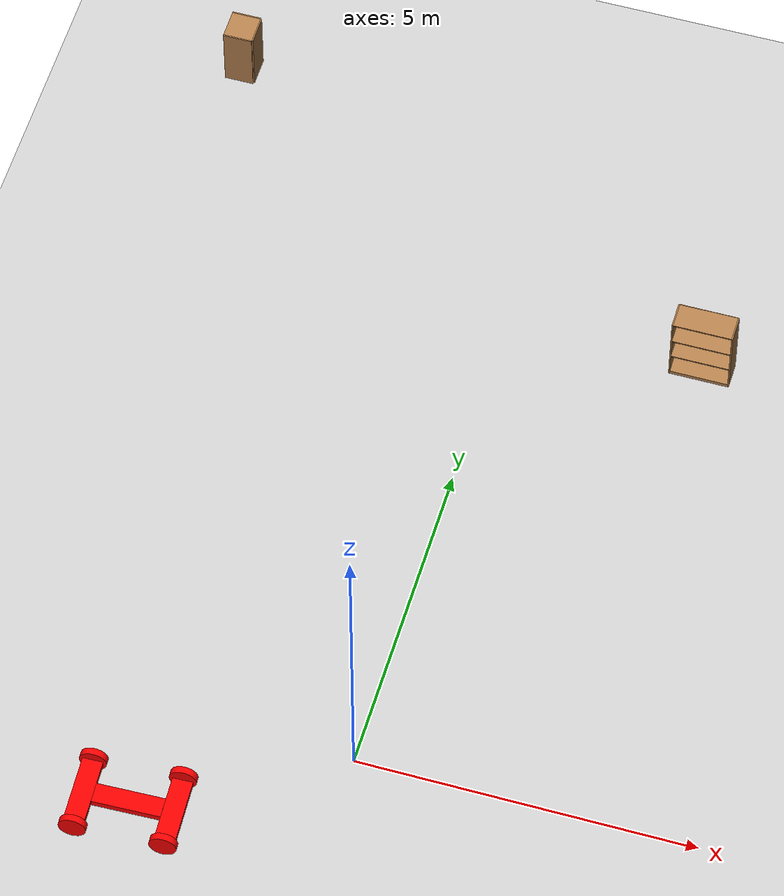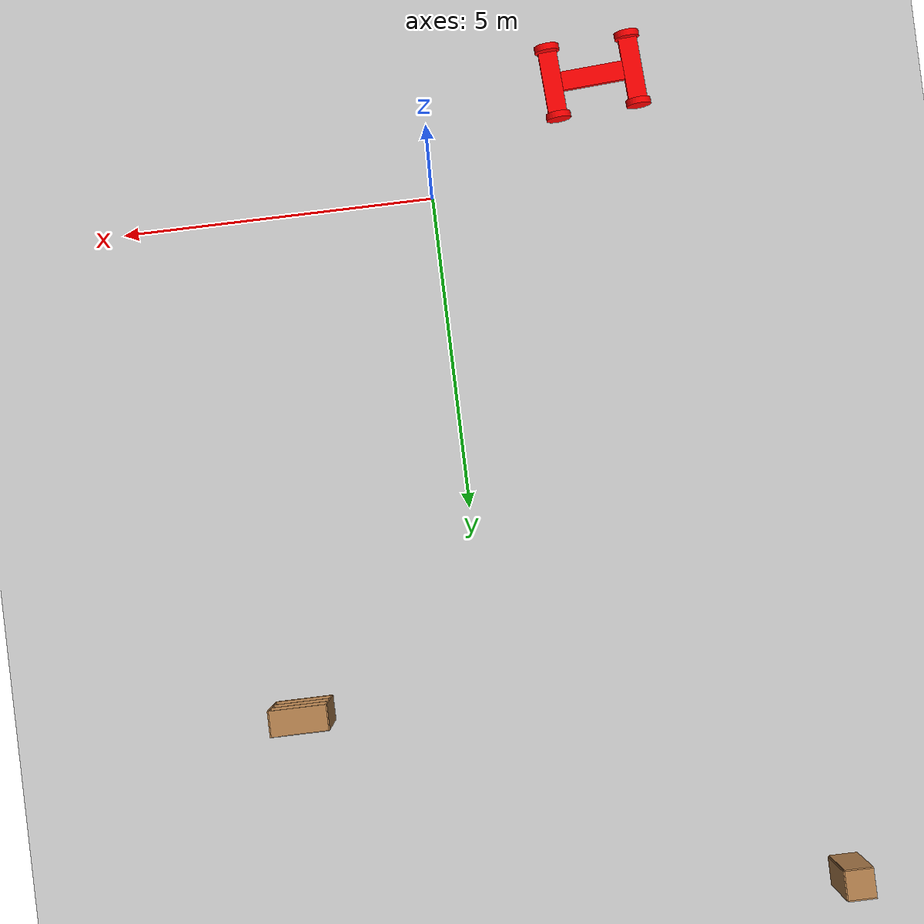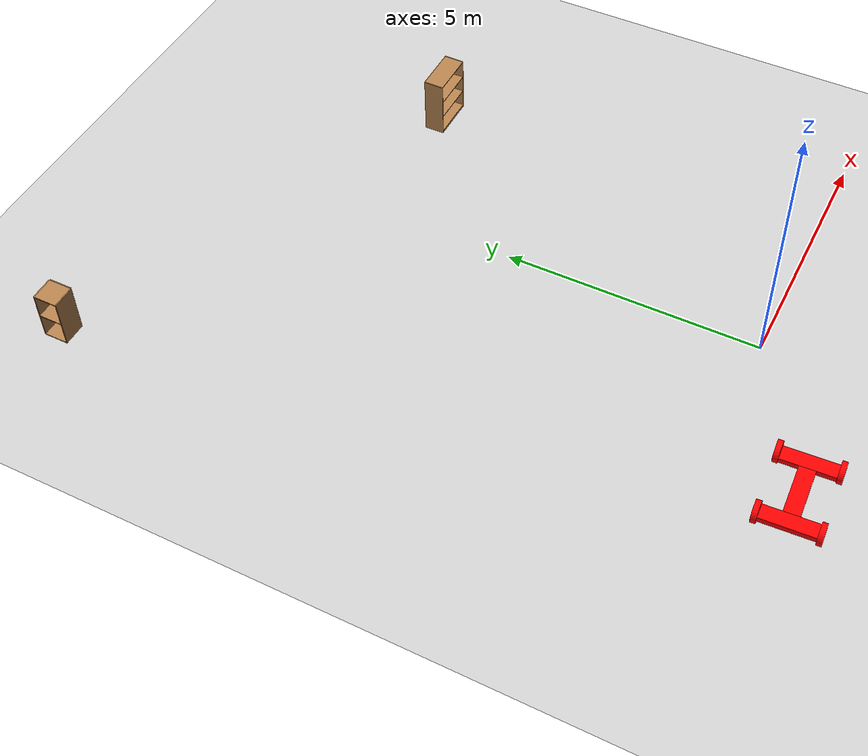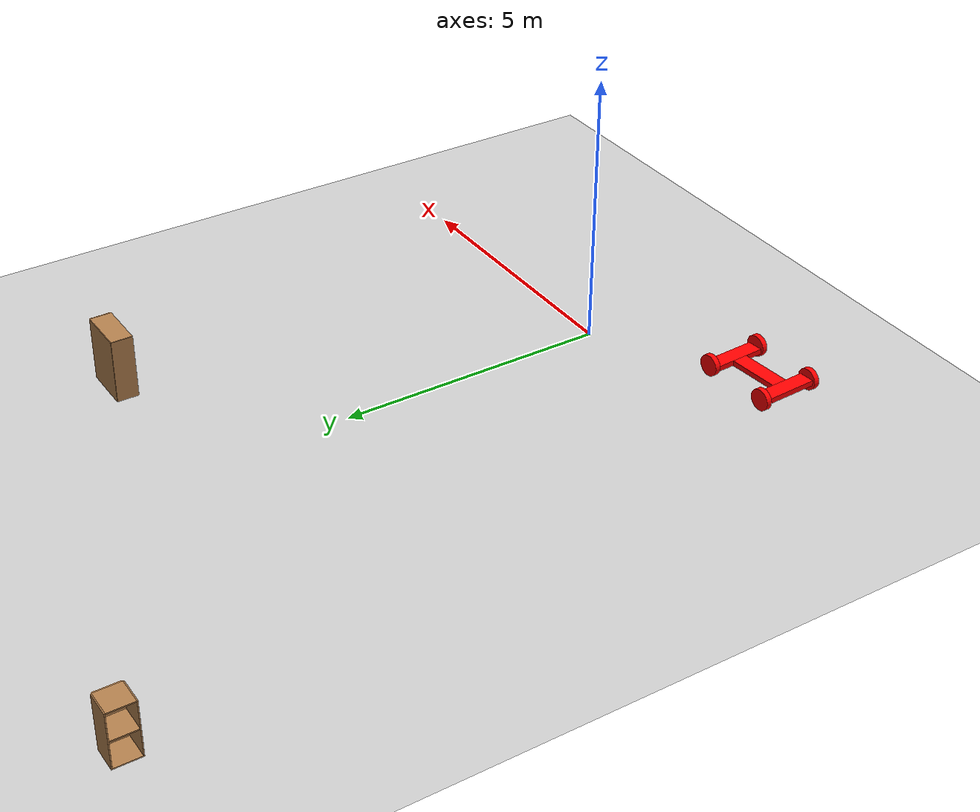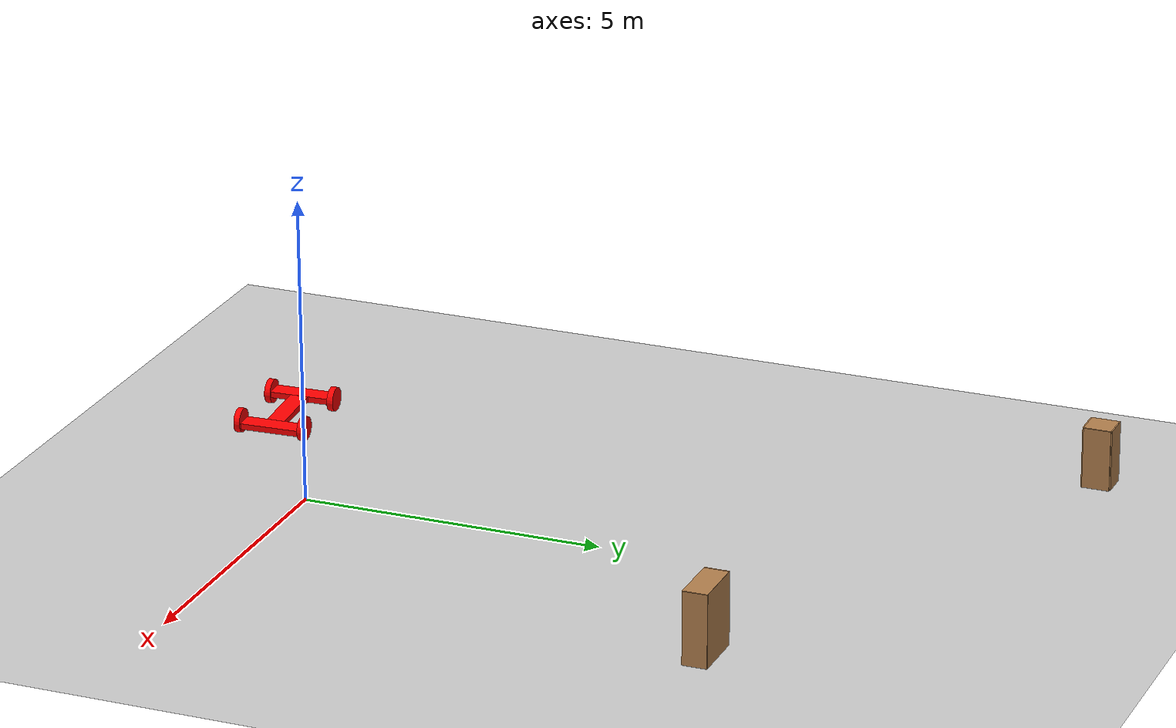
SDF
<sdf version="1.6">
 <world name="default">
  <model name="ground_plane">
   <static>1</static>
   <link name="link">
    <collision name="collision">
     <geometry><plane><normal>0 0 1</normal><size>100 100</size></plane></geometry>
     <surface><friction><ode><mu>100</mu><mu2>50</mu2></ode></friction></surface>
    </collision>
    <visual name="visual">
     <cast_shadows>0</cast_shadows>
     <geometry><plane><normal>0 0 1</normal><size>100 100</size></plane></geometry>
     <material>
      <script><uri>file://media/materials/scripts/gazebo.material</uri><name>Gazebo/Grey</name></script>
     </material>
    </visual>
   </link>
  </model>
  <model name="bookshelf">
   <static>1</static>
   <link name="link">
    <inertial><mass>1</mass></inertial>
    <collision name="back">
     <pose>0 0.005 0.6 0 -0 0</pose>
     <geometry><box><size>0.9 0.01 1.2</size></box></geometry>
    </collision>
    <visual name="visual1">
     <pose>0 0.005 0.6 0 -0 0</pose>
     <geometry><box><size>0.9 0.01 1.2</size></box></geometry>
     <material>
      <script><uri>file://media/materials/scripts/gazebo.material</uri><name>Gazebo/Wood</name></script>
     </material>
    </visual>
    <collision name="left_side">
     <pose>0.45 -0.195 0.6 0 -0 0</pose>
     <geometry><box><size>0.02 0.4 1.2</size></box></geometry>
    </collision>
    <visual name="visual2">
     <pose>0.45 -0.195 0.6 0 -0 0</pose>
     <geometry><box><size>0.02 0.4 1.2</size></box></geometry>
     <material>
      <script><uri>file://media/materials/scripts/gazebo.material</uri><name>Gazebo/Wood</name></script>
     </material>
    </visual>
    <collision name="right_side">
     <pose>-0.45 -0.195 0.6 0 -0 0</pose>
     <geometry><box><size>0.02 0.4 1.2</size></box></geometry>
    </collision>
    <visual name="visual3">
     <pose>-0.45 -0.195 0.6 0 -0 0</pose>
     <geometry><box><size>0.02 0.4 1.2</size></box></geometry>
     <material>
      <script><uri>file://media/materials/scripts/gazebo.material</uri><name>Gazebo/Wood</name></script>
     </material>
    </visual>
    <collision name="bottom">
     <pose>0 -0.195 0.03 0 -0 0</pose>
     <geometry><box><size>0.88 0.4 0.06</size></box></geometry>
    </collision>
    <visual name="visual4">
     <pose>0 -0.195 0.03 0 -0 0</pose>
     <geometry><box><size>0.88 0.4 0.06</size></box></geometry>
     <material>
      <script><uri>file://media/materials/scripts/gazebo.material</uri><name>Gazebo/Wood</name></script>
     </material>
    </visual>
    <collision name="top">
     <pose>0 -0.195 1.19 0 -0 0</pose>
     <geometry><box><size>0.88 0.4 0.02</size></box></geometry>
    </collision>
    <visual name="visual5">
     <pose>0 -0.195 1.19 0 -0 0</pose>
     <geometry><box><size>0.88 0.4 0.02</size></box></geometry>
     <material>
      <script><uri>file://media/materials/scripts/gazebo.material</uri><name>Gazebo/Wood</name></script>
     </material>
    </visual>
    <collision name="low_shelf">
     <pose>0 -0.195 0.43 0 -0 0</pose>
     <geometry><box><size>0.88 0.4 0.02</size></box></geometry>
    </collision>
    <visual name="visual6">
     <pose>0 -0.195 0.43 0 -0 0</pose>
     <geometry><box><size>0.88 0.4 0.02</size></box></geometry>
     <material>
      <script><uri>file://media/materials/scripts/gazebo.material</uri><name>Gazebo/Wood</name></script>
     </material>
    </visual>
    <collision name="high_shelf">
     <pose>0 -0.195 0.8 0 -0 0</pose>
     <geometry><box><size>0.88 0.4 0.02</size></box></geometry>
    </collision>
    <visual name="visual7">
     <pose>0 -0.195 0.8 0 -0 0</pose>
     <geometry><box><size>0.88 0.4 0.02</size></box></geometry>
     <material>
      <script><uri>file://media/materials/scripts/gazebo.material</uri><name>Gazebo/Wood</name></script>
     </material>
    </visual>
   </link>
   <pose>2.99223 8.1082 0 0 -0 0</pose>
  </model>
  <model name="cabinet">
   <static>1</static>
   <link name="cabinet_bottom_plate">
    <inertial>
     <pose>0 0 -1 0 -0 0</pose>
     <inertia><ixx>2.05</ixx><ixy>0</ixy><ixz>0</ixz><iyy>2.05</iyy><iyz>0</iyz><izz>2.05</izz></inertia>
     <mass>25</mass>
    </inertial>
    <collision name="cabinet_bottom_plate_geom">
     <pose>0 0 0.01 0 -0 0</pose>
     <geometry><box><size>0.45 0.45 0.02</size></box></geometry>
    </collision>
    <visual name="cabinet_bottom_plate_geom_visual">
     <pose>0 0 0.01 0 -0 0</pose>
     <geometry><box><size>0.45 0.45 0.02</size></box></geometry>
     <material>
      <script><uri>file://media/materials/scripts/gazebo.material</uri><name>Gazebo/Wood</name></script>
     </material>
    </visual>
    <collision name="cabinet_bottom_plate_geom_cabinet_back_plate">
     <pose>0.235 0 0.51 0 -0 0</pose>
     <geometry><box><size>0.02 0.45 1.02</size></box></geometry>
    </collision>
    <visual name="cabinet_bottom_plate_geom_cabinet_back_plate_visual">
     <pose>0.235 0 0.51 0 -0 0</pose>
     <geometry><box><size>0.02 0.45 1.02</size></box></geometry>
     <material>
      <script><uri>file://media/materials/scripts/gazebo.material</uri><name>Gazebo/Wood</name></script>
     </material>
    </visual>
    <collision name="cabinet_bottom_plate_geom_cabinet_left_plate">
     <pose>0 0.235 0.51 0 -0 0</pose>
     <geometry><box><size>0.45 0.02 1.02</size></box></geometry>
    </collision>
    <visual name="cabinet_bottom_plate_geom_cabinet_left_plate_visual">
     <pose>0 0.235 0.51 0 -0 0</pose>
     <geometry><box><size>0.45 0.02 1.02</size></box></geometry>
     <material>
      <script><uri>file://media/materials/scripts/gazebo.material</uri><name>Gazebo/Wood</name></script>
     </material>
    </visual>
    <collision name="cabinet_bottom_plate_geom_cabinet_middle_plate">
     <pose>0 0 0.51 0 -0 0</pose>
     <geometry><box><size>0.45 0.45 0.02</size></box></geometry>
    </collision>
    <visual name="cabinet_bottom_plate_geom_cabinet_middle_plate_visual">
     <pose>0 0 0.51 0 -0 0</pose>
     <geometry><box><size>0.45 0.45 0.02</size></box></geometry>
     <material>
      <script><uri>file://media/materials/scripts/gazebo.material</uri><name>Gazebo/Wood</name></script>
     </material>
    </visual>
    <collision name="cabinet_bottom_plate_geom_cabinet_right_plate">
     <pose>0 -0.235 0.51 0 -0 0</pose>
     <geometry><box><size>0.45 0.02 1.02</size></box></geometry>
    </collision>
    <visual name="cabinet_bottom_plate_geom_cabinet_right_plate_visual">
     <pose>0 -0.235 0.51 0 -0 0</pose>
     <geometry><box><size>0.45 0.02 1.02</size></box></geometry>
     <material>
      <script><uri>file://media/materials/scripts/gazebo.material</uri><name>Gazebo/Wood</name></script>
     </material>
    </visual>
    <collision name="cabinet_bottom_plate_geom_cabinet_top_plate">
     <pose>0 0 1.01 0 -0 0</pose>
     <geometry><box><size>0.45 0.45 0.02</size></box></geometry>
    </collision>
    <visual name="cabinet_bottom_plate_geom_cabinet_top_plate_visual">
     <pose>0 0 1.01 0 -0 0</pose>
     <geometry><box><size>0.45 0.45 0.02</size></box></geometry>
     <material>
      <script><uri>file://media/materials/scripts/gazebo.material</uri><name>Gazebo/Wood</name></script>
     </material>
    </visual>
   </link>
   <pose>-5.23174 11.4449 0 0 -0 0</pose>
  </model>
  <model name="Robot">
   <link name="link_0">
    <pose>0.650121 -0 -0.012852 0 -0 0</pose>
    <inertial>
     <mass>1</mass>
     <inertia>
      <ixx>0.166667</ixx>
      <ixy>0</ixy>
      <ixz>0</ixz>
      <iyy>0.166667</iyy>
      <iyz>0</iyz>
      <izz>0.166667</izz>
     </inertia>
    </inertial>
    <visual name="visual">
     <geometry><box><size>0.3 1 0.1</size></box></geometry>
     <material>
      <lighting>1</lighting>
      <script><uri>file://media/materials/scripts/gazebo.material</uri><name>Gazebo/Grey</name></script>
      <shader type="pixel"><normal_map>__default__</normal_map></shader>
      <ambient>1 0 0 1</ambient>
      <diffuse>1 0 0 1</diffuse>
      <specular>0.01 0.01 0.01 1</specular>
      <emissive>0 0 0 1</emissive>
     </material>
    </visual>
    <collision name="collision">
     <geometry><box><size>0.3 1 0.1</size></box></geometry>
     <surface>
      <friction>
       <ode><mu>1</mu><mu2>1</mu2><fdir1>0 0 0</fdir1><slip1>0</slip1><slip2>0</slip2></ode>
       <torsional>
        <coefficient>1</coefficient>
        <patch_radius>0</patch_radius>
        <surface_radius>0</surface_radius>
        <use_patch_radius>1</use_patch_radius>
        <ode><slip>0</slip></ode>
       </torsional>
      </friction>
      <bounce><restitution_coefficient>0</restitution_coefficient><threshold>1e+06</threshold></bounce>
      <contact>
       <collide_without_contact>0</collide_without_contact>
       <collide_without_contact_bitmask>1</collide_without_contact_bitmask>
       <collide_bitmask>1</collide_bitmask>
       <ode>
        <soft_cfm>0</soft_cfm>
        <soft_erp>0.2</soft_erp>
        <kp>1e+13</kp>
        <kd>1</kd>
        <max_vel>0.01</max_vel>
        <min_depth>0</min_depth>
       </ode>
       <bullet>
        <split_impulse>1</split_impulse>
        <split_impulse_penetration_threshold>-0.01</split_impulse_penetration_threshold>
        <soft_cfm>0</soft_cfm>
        <soft_erp>0.2</soft_erp>
        <kp>1e+13</kp>
        <kd>1</kd>
       </bullet>
      </contact>
     </surface>
    </collision>
   </link>
   <link name="link_0_clone">
    <pose>2e-06 -0 -0.012852 0 -0 1.57</pose>
    <inertial>
     <mass>1</mass>
     <inertia>
      <ixx>0.166667</ixx>
      <ixy>0</ixy>
      <ixz>0</ixz>
      <iyy>0.166667</iyy>
      <iyz>0</iyz>
      <izz>0.166667</izz>
     </inertia>
    </inertial>
    <visual name="visual">
     <geometry><box><size>0.3 1 0.1</size></box></geometry>
     <material>
      <lighting>1</lighting>
      <script><uri>file://media/materials/scripts/gazebo.material</uri><name>Gazebo/Grey</name></script>
      <shader type="pixel"><normal_map>__default__</normal_map></shader>
      <ambient>1 0 0 1</ambient>
      <diffuse>1 0 0 1</diffuse>
      <specular>0.01 0.01 0.01 1</specular>
      <emissive>0 0 0 1</emissive>
     </material>
    </visual>
    <collision name="collision">
     <geometry><box><size>0.3 1 0.1</size></box></geometry>
     <surface>
      <friction>
       <ode><mu>1</mu><mu2>1</mu2><fdir1>0 0 0</fdir1><slip1>0</slip1><slip2>0</slip2></ode>
       <torsional>
        <coefficient>1</coefficient>
        <patch_radius>0</patch_radius>
        <surface_radius>0</surface_radius>
        <use_patch_radius>1</use_patch_radius>
        <ode><slip>0</slip></ode>
       </torsional>
      </friction>
      <bounce><restitution_coefficient>0</restitution_coefficient><threshold>1e+06</threshold></bounce>
      <contact>
       <collide_without_contact>0</collide_without_contact>
       <collide_without_contact_bitmask>1</collide_without_contact_bitmask>
       <collide_bitmask>1</collide_bitmask>
       <ode>
        <soft_cfm>0</soft_cfm>
        <soft_erp>0.2</soft_erp>
        <kp>1e+13</kp>
        <kd>1</kd>
        <max_vel>0.01</max_vel>
        <min_depth>0</min_depth>
       </ode>
       <bullet>
        <split_impulse>1</split_impulse>
        <split_impulse_penetration_threshold>-0.01</split_impulse_penetration_threshold>
        <soft_cfm>0</soft_cfm>
        <soft_erp>0.2</soft_erp>
        <kp>1e+13</kp>
        <kd>1</kd>
       </bullet>
      </contact>
     </surface>
    </collision>
   </link>
   <link name="link_0_clone_0">
    <pose>-0.650118 0 -0.012852 0 -0 0</pose>
    <inertial>
     <mass>1</mass>
     <inertia>
      <ixx>0.166667</ixx>
      <ixy>0</ixy>
      <ixz>0</ixz>
      <iyy>0.166667</iyy>
      <iyz>0</iyz>
      <izz>0.166667</izz>
     </inertia>
    </inertial>
    <visual name="visual">
     <geometry><box><size>0.3 1 0.1</size></box></geometry>
     <material>
      <lighting>1</lighting>
      <script><uri>file://media/materials/scripts/gazebo.material</uri><name>Gazebo/Grey</name></script>
      <shader type="pixel"><normal_map>__default__</normal_map></shader>
      <ambient>1 0 0 1</ambient>
      <diffuse>1 0 0 1</diffuse>
      <specular>0.01 0.01 0.01 1</specular>
      <emissive>0 0 0 1</emissive>
     </material>
    </visual>
    <collision name="collision">
     <geometry><box><size>0.3 1 0.1</size></box></geometry>
     <surface>
      <friction>
       <ode><mu>1</mu><mu2>1</mu2><fdir1>0 0 0</fdir1><slip1>0</slip1><slip2>0</slip2></ode>
       <torsional>
        <coefficient>1</coefficient>
        <patch_radius>0</patch_radius>
        <surface_radius>0</surface_radius>
        <use_patch_radius>1</use_patch_radius>
        <ode><slip>0</slip></ode>
       </torsional>
      </friction>
      <bounce><restitution_coefficient>0</restitution_coefficient><threshold>1e+06</threshold></bounce>
      <contact>
       <collide_without_contact>0</collide_without_contact>
       <collide_without_contact_bitmask>1</collide_without_contact_bitmask>
       <collide_bitmask>1</collide_bitmask>
       <ode>
        <soft_cfm>0</soft_cfm>
        <soft_erp>0.2</soft_erp>
        <kp>1e+13</kp>
        <kd>1</kd>
        <max_vel>0.01</max_vel>
        <min_depth>0</min_depth>
       </ode>
       <bullet>
        <split_impulse>1</split_impulse>
        <split_impulse_penetration_threshold>-0.01</split_impulse_penetration_threshold>
        <soft_cfm>0</soft_cfm>
        <soft_erp>0.2</soft_erp>
        <kp>1e+13</kp>
        <kd>1</kd>
       </bullet>
      </contact>
     </surface>
    </collision>
   </link>
   <link name="link_2">
    <pose>0.650121 -0.550159 0.032112 1.57 -0 0</pose>
    <inertial>
     <mass>1</mass>
     <inertia><ixx>0.145833</ixx><ixy>0</ixy><ixz>0</ixz><iyy>0.145833</iyy><iyz>0</iyz><izz>0.125</izz></inertia>
    </inertial>
    <visual name="visual">
     <geometry><cylinder><radius>0.2</radius><length>0.1</length></cylinder></geometry>
     <material>
      <lighting>1</lighting>
      <script><uri>file://media/materials/scripts/gazebo.material</uri><name>Gazebo/Grey</name></script>
      <shader type="pixel"><normal_map>__default__</normal_map></shader>
      <ambient>1 0 0 1</ambient>
      <diffuse>1 0 0 1</diffuse>
      <specular>0.01 0.01 0.01 1</specular>
      <emissive>0 0 0 1</emissive>
     </material>
    </visual>
    <collision name="collision">
     <geometry><cylinder><radius>0.2</radius><length>0.1</length></cylinder></geometry>
     <surface>
      <friction>
       <ode><mu>1</mu><mu2>1</mu2><fdir1>0 0 0</fdir1><slip1>0</slip1><slip2>0</slip2></ode>
       <torsional>
        <coefficient>1</coefficient>
        <patch_radius>0</patch_radius>
        <surface_radius>0</surface_radius>
        <use_patch_radius>1</use_patch_radius>
        <ode><slip>0</slip></ode>
       </torsional>
      </friction>
      <bounce><restitution_coefficient>0</restitution_coefficient><threshold>1e+06</threshold></bounce>
      <contact>
       <collide_without_contact>0</collide_without_contact>
       <collide_without_contact_bitmask>1</collide_without_contact_bitmask>
       <collide_bitmask>1</collide_bitmask>
       <ode>
        <soft_cfm>0</soft_cfm>
        <soft_erp>0.2</soft_erp>
        <kp>1e+13</kp>
        <kd>1</kd>
        <max_vel>0.01</max_vel>
        <min_depth>0</min_depth>
       </ode>
       <bullet>
        <split_impulse>1</split_impulse>
        <split_impulse_penetration_threshold>-0.01</split_impulse_penetration_threshold>
        <soft_cfm>0</soft_cfm>
        <soft_erp>0.2</soft_erp>
        <kp>1e+13</kp>
        <kd>1</kd>
       </bullet>
      </contact>
     </surface>
    </collision>
   </link>
   <link name="link_2_clone">
    <pose>0.650121 0.550159 0.032148 1.57 -0 0</pose>
    <inertial>
     <mass>1</mass>
     <inertia><ixx>0.145833</ixx><ixy>0</ixy><ixz>0</ixz><iyy>0.145833</iyy><iyz>0</iyz><izz>0.125</izz></inertia>
    </inertial>
    <visual name="visual">
     <geometry><cylinder><radius>0.2</radius><length>0.1</length></cylinder></geometry>
     <material>
      <lighting>1</lighting>
      <script><uri>file://media/materials/scripts/gazebo.material</uri><name>Gazebo/Grey</name></script>
      <shader type="pixel"><normal_map>__default__</normal_map></shader>
      <ambient>1 0 0 1</ambient>
      <diffuse>1 0 0 1</diffuse>
      <specular>0.01 0.01 0.01 1</specular>
      <emissive>0 0 0 1</emissive>
     </material>
    </visual>
    <collision name="collision">
     <geometry><cylinder><radius>0.2</radius><length>0.1</length></cylinder></geometry>
     <surface>
      <friction>
       <ode><mu>1</mu><mu2>1</mu2><fdir1>0 0 0</fdir1><slip1>0</slip1><slip2>0</slip2></ode>
       <torsional>
        <coefficient>1</coefficient>
        <patch_radius>0</patch_radius>
        <surface_radius>0</surface_radius>
        <use_patch_radius>1</use_patch_radius>
        <ode><slip>0</slip></ode>
       </torsional>
      </friction>
      <bounce><restitution_coefficient>0</restitution_coefficient><threshold>1e+06</threshold></bounce>
      <contact>
       <collide_without_contact>0</collide_without_contact>
       <collide_without_contact_bitmask>1</collide_without_contact_bitmask>
       <collide_bitmask>1</collide_bitmask>
       <ode>
        <soft_cfm>0</soft_cfm>
        <soft_erp>0.2</soft_erp>
        <kp>1e+13</kp>
        <kd>1</kd>
        <max_vel>0.01</max_vel>
        <min_depth>0</min_depth>
       </ode>
       <bullet>
        <split_impulse>1</split_impulse>
        <split_impulse_penetration_threshold>-0.01</split_impulse_penetration_threshold>
        <soft_cfm>0</soft_cfm>
        <soft_erp>0.2</soft_erp>
        <kp>1e+13</kp>
        <kd>1</kd>
       </bullet>
      </contact>
     </surface>
    </collision>
   </link>
   <link name="link_2_clone_0">
    <pose>-0.650118 -0.550159 -0.012852 1.57 -0 0</pose>
    <inertial>
     <mass>1</mass>
     <inertia><ixx>0.145833</ixx><ixy>0</ixy><ixz>0</ixz><iyy>0.145833</iyy><iyz>0</iyz><izz>0.125</izz></inertia>
    </inertial>
    <visual name="visual">
     <geometry><cylinder><radius>0.2</radius><length>0.1</length></cylinder></geometry>
     <material>
      <lighting>1</lighting>
      <script><uri>file://media/materials/scripts/gazebo.material</uri><name>Gazebo/Grey</name></script>
      <shader type="pixel"><normal_map>__default__</normal_map></shader>
      <ambient>1 0 0 1</ambient>
      <diffuse>1 0 0 1</diffuse>
      <specular>0.01 0.01 0.01 1</specular>
      <emissive>0 0 0 1</emissive>
     </material>
    </visual>
    <collision name="collision">
     <geometry><cylinder><radius>0.2</radius><length>0.1</length></cylinder></geometry>
     <surface>
      <friction>
       <ode><mu>1</mu><mu2>1</mu2><fdir1>0 0 0</fdir1><slip1>0</slip1><slip2>0</slip2></ode>
       <torsional>
        <coefficient>1</coefficient>
        <patch_radius>0</patch_radius>
        <surface_radius>0</surface_radius>
        <use_patch_radius>1</use_patch_radius>
        <ode><slip>0</slip></ode>
       </torsional>
      </friction>
      <bounce><restitution_coefficient>0</restitution_coefficient><threshold>1e+06</threshold></bounce>
      <contact>
       <collide_without_contact>0</collide_without_contact>
       <collide_without_contact_bitmask>1</collide_without_contact_bitmask>
       <collide_bitmask>1</collide_bitmask>
       <ode>
        <soft_cfm>0</soft_cfm>
        <soft_erp>0.2</soft_erp>
        <kp>1e+13</kp>
        <kd>1</kd>
        <max_vel>0.01</max_vel>
        <min_depth>0</min_depth>
       </ode>
       <bullet>
        <split_impulse>1</split_impulse>
        <split_impulse_penetration_threshold>-0.01</split_impulse_penetration_threshold>
        <soft_cfm>0</soft_cfm>
        <soft_erp>0.2</soft_erp>
        <kp>1e+13</kp>
        <kd>1</kd>
       </bullet>
      </contact>
     </surface>
    </collision>
   </link>
   <link name="link_2_clone_1">
    <pose>-0.650118 0.550159 -0.012852 1.57 -0 0</pose>
    <inertial>
     <mass>1</mass>
     <inertia><ixx>0.145833</ixx><ixy>0</ixy><ixz>0</ixz><iyy>0.145833</iyy><iyz>0</iyz><izz>0.125</izz></inertia>
    </inertial>
    <visual name="visual">
     <geometry><cylinder><radius>0.2</radius><length>0.1</length></cylinder></geometry>
     <material>
      <lighting>1</lighting>
      <script><uri>file://media/materials/scripts/gazebo.material</uri><name>Gazebo/Grey</name></script>
      <shader type="pixel"><normal_map>__default__</normal_map></shader>
      <ambient>1 0 0 1</ambient>
      <diffuse>1 0 0 1</diffuse>
      <specular>0.01 0.01 0.01 1</specular>
      <emissive>0 0 0 1</emissive>
     </material>
    </visual>
    <collision name="collision">
     <geometry><cylinder><radius>0.2</radius><length>0.1</length></cylinder></geometry>
     <surface>
      <friction>
       <ode><mu>1</mu><mu2>1</mu2><fdir1>0 0 0</fdir1><slip1>0</slip1><slip2>0</slip2></ode>
       <torsional>
        <coefficient>1</coefficient>
        <patch_radius>0</patch_radius>
        <surface_radius>0</surface_radius>
        <use_patch_radius>1</use_patch_radius>
        <ode><slip>0</slip></ode>
       </torsional>
      </friction>
      <bounce><restitution_coefficient>0</restitution_coefficient><threshold>1e+06</threshold></bounce>
      <contact>
       <collide_without_contact>0</collide_without_contact>
       <collide_without_contact_bitmask>1</collide_without_contact_bitmask>
       <collide_bitmask>1</collide_bitmask>
       <ode>
        <soft_cfm>0</soft_cfm>
        <soft_erp>0.2</soft_erp>
        <kp>1e+13</kp>
        <kd>1</kd>
        <max_vel>0.01</max_vel>
        <min_depth>0</min_depth>
       </ode>
       <bullet>
        <split_impulse>1</split_impulse>
        <split_impulse_penetration_threshold>-0.01</split_impulse_penetration_threshold>
        <soft_cfm>0</soft_cfm>
        <soft_erp>0.2</soft_erp>
        <kp>1e+13</kp>
        <kd>1</kd>
       </bullet>
      </contact>
     </surface>
    </collision>
   </link>
   <joint name="link_0_JOINT_2" type="revolute">
    <parent>link_0</parent>
    <child>link_2</child>
    <axis>
     <xyz>1 0 0</xyz>
     <use_parent_model_frame>0</use_parent_model_frame>
     <limit>
      <lower>-1.79769e+308</lower>
      <upper>1.79769e+308</upper>
      <effort>-1</effort>
      <velocity>-1</velocity>
     </limit>
     <dynamics>
      <spring_reference>0</spring_reference>
      <spring_stiffness>0</spring_stiffness>
      <damping>0</damping>
      <friction>0</friction>
     </dynamics>
    </axis>
    <physics>
     <ode><limit><cfm>0</cfm><erp>0.2</erp></limit><suspension><cfm>0</cfm><erp>0.2</erp></suspension></ode>
    </physics>
   </joint>
   <joint name="link_0_JOINT_3" type="revolute">
    <parent>link_0</parent>
    <child>link_2_clone</child>
    <axis>
     <xyz>1 0 0</xyz>
     <use_parent_model_frame>0</use_parent_model_frame>
     <limit>
      <lower>-1.79769e+308</lower>
      <upper>1.79769e+308</upper>
      <effort>-1</effort>
      <velocity>-1</velocity>
     </limit>
     <dynamics>
      <spring_reference>0</spring_reference>
      <spring_stiffness>0</spring_stiffness>
      <damping>0</damping>
      <friction>0</friction>
     </dynamics>
    </axis>
    <physics>
     <ode><limit><cfm>0</cfm><erp>0.2</erp></limit><suspension><cfm>0</cfm><erp>0.2</erp></suspension></ode>
    </physics>
   </joint>
   <joint name="link_0_clone_0_JOINT_4" type="revolute">
    <parent>link_0_clone_0</parent>
    <child>link_2_clone_0</child>
    <axis>
     <xyz>1 0 0</xyz>
     <use_parent_model_frame>0</use_parent_model_frame>
     <limit>
      <lower>-1.79769e+308</lower>
      <upper>1.79769e+308</upper>
      <effort>-1</effort>
      <velocity>-1</velocity>
     </limit>
     <dynamics>
      <spring_reference>0</spring_reference>
      <spring_stiffness>0</spring_stiffness>
      <damping>0</damping>
      <friction>0</friction>
     </dynamics>
    </axis>
    <physics>
     <ode><limit><cfm>0</cfm><erp>0.2</erp></limit><suspension><cfm>0</cfm><erp>0.2</erp></suspension></ode>
    </physics>
   </joint>
   <joint name="link_0_clone_0_JOINT_5" type="revolute">
    <parent>link_0_clone_0</parent>
    <child>link_2_clone_1</child>
    <axis>
     <xyz>1 0 0</xyz>
     <use_parent_model_frame>0</use_parent_model_frame>
     <limit>
      <lower>-1.79769e+308</lower>
      <upper>1.79769e+308</upper>
      <effort>-1</effort>
      <velocity>-1</velocity>
     </limit>
     <dynamics>
      <spring_reference>0</spring_reference>
      <spring_stiffness>0</spring_stiffness>
      <damping>0</damping>
      <friction>0</friction>
     </dynamics>
    </axis>
    <physics>
     <ode><limit><cfm>0</cfm><erp>0.2</erp></limit><suspension><cfm>0</cfm><erp>0.2</erp></suspension></ode>
    </physics>
   </joint>
   <joint name="link_0_clone_JOINT_0" type="revolute">
    <parent>link_0_clone</parent>
    <child>link_0</child>
    <axis>
     <xyz>1 0 0</xyz>
     <use_parent_model_frame>0</use_parent_model_frame>
     <limit>
      <lower>-1.79769e+308</lower>
      <upper>1.79769e+308</upper>
      <effort>-1</effort>
      <velocity>-1</velocity>
     </limit>
     <dynamics>
      <spring_reference>0</spring_reference>
      <spring_stiffness>0</spring_stiffness>
      <damping>0</damping>
      <friction>0</friction>
     </dynamics>
    </axis>
    <physics>
     <ode><limit><cfm>0</cfm><erp>0.2</erp></limit><suspension><cfm>0</cfm><erp>0.2</erp></suspension></ode>
    </physics>
   </joint>
   <joint name="link_0_clone_JOINT_1" type="revolute">
    <parent>link_0_clone</parent>
    <child>link_0_clone_0</child>
    <axis>
     <xyz>1 0 0</xyz>
     <use_parent_model_frame>0</use_parent_model_frame>
     <limit>
      <lower>-1.79769e+308</lower>
      <upper>1.79769e+308</upper>
      <effort>-1</effort>
      <velocity>-1</velocity>
     </limit>
     <dynamics>
      <spring_reference>0</spring_reference>
      <spring_stiffness>0</spring_stiffness>
      <damping>0</damping>
      <friction>0</friction>
     </dynamics>
    </axis>
    <physics>
     <ode><limit><cfm>0</cfm><erp>0.2</erp></limit><suspension><cfm>0</cfm><erp>0.2</erp></suspension></ode>
    </physics>
   </joint>
   <static>0</static>
   <pose>-2.78681 -1.62245 0.190363 -2.6e-05 0.034581 0.053221</pose>
  </model>
 </world>
</sdf>
